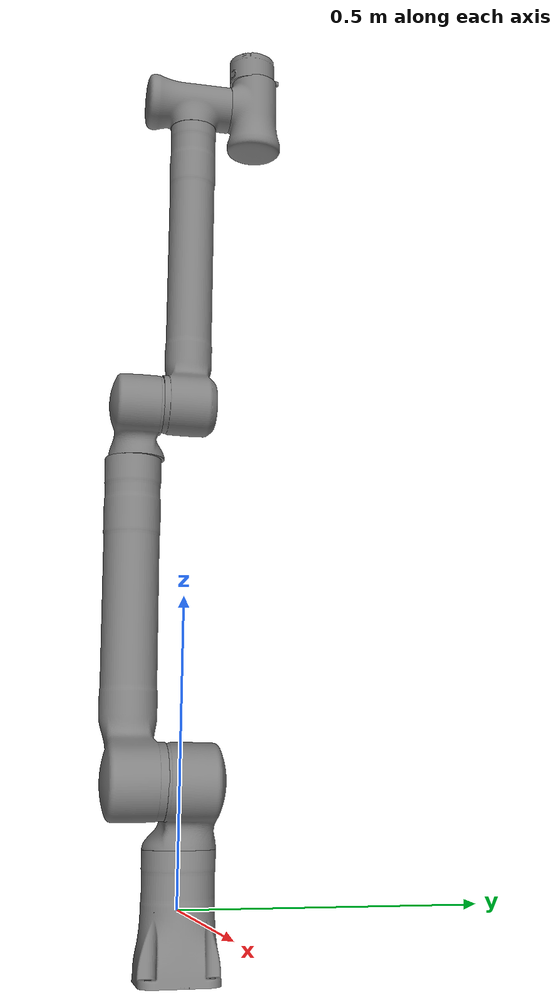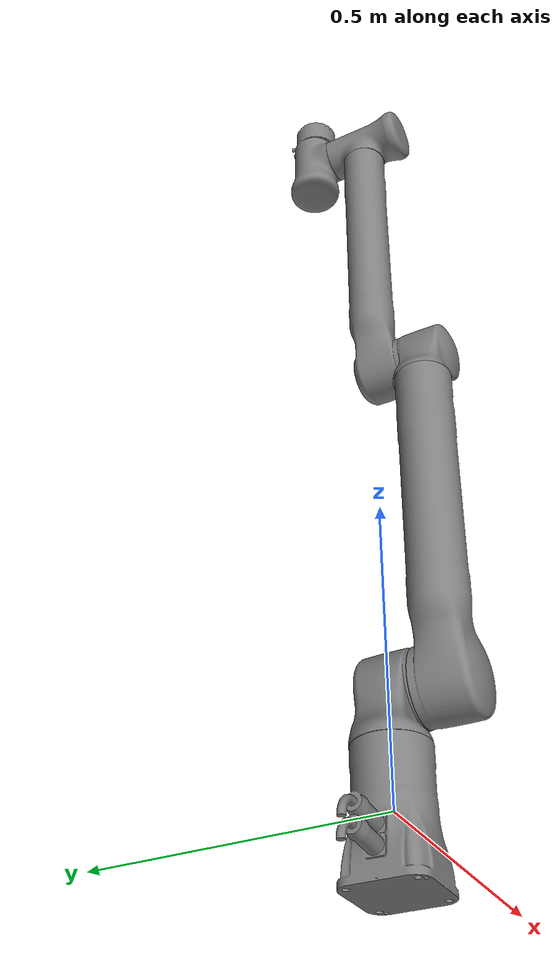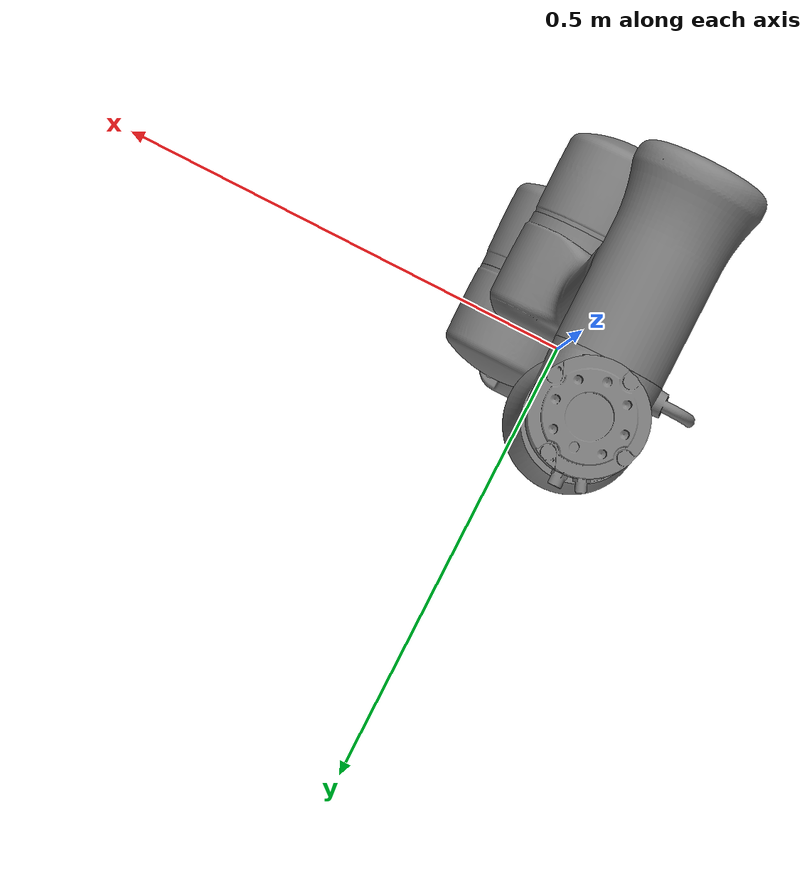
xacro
<?xml version="1.0"?>
<robot name="kr1205" xmlns:xacro="http://www.ros.org/wiki/xacro">

  <material name="black">
    <color rgba="0.5 0.5 0.5 1"/>
  </material>

  <!-- Base Link -->
  <link name="base_link">
    <visual>
      <geometry>
        <mesh filename="file:///home/mo/Thesis/src/robot_control/meshes/visual/base_link.stl" scale="0.001 0.001 0.001"/>
      </geometry>
      <material name="black"/>
    </visual>
  </link>

  <!-- joint_1 -->
  <joint name="joint_1" type="revolute">
    <parent link="base_link"/>
    <child link="link_1"/>
    <origin xyz="0.049 0.0 0.197" rpy="0 0 0"/>
    <axis xyz="0 0 1"/>
    <limit lower="-3.14" upper="3.14" effort="100" velocity="1.0"/>
  </joint>
  <link name="link_1">
    <visual>
      <geometry>
        <mesh filename="file:///home/mo/Thesis/src/robot_control/meshes/visual/link_1.stl" scale="0.001 0.001 0.001"/>
      </geometry>
      <material name="black"/>
    </visual>
  </link>

  <!-- joint_2 -->
  <joint name="joint_2" type="revolute">
    <parent link="link_1"/>
    <child link="link_2"/>
    <origin xyz="0.001 -0.0857 0.0007" rpy="0 0 0"/>
    <axis xyz="0 1 0"/>
    <limit lower="-3.14" upper="3.14" effort="100" velocity="1.0"/>
  </joint>
  <link name="link_2">
    <visual>
      <geometry>
        <mesh filename="file:///home/mo/Thesis/src/robot_control/meshes/visual/link_2.stl" scale="0.001 0.001 0.001"/>
      </geometry>
      <material name="black"/>
    </visual>
  </link>

  <!-- joint_3 -->
  <joint name="joint_3" type="revolute">
    <parent link="link_2"/>
    <child link="link_3"/>
    <origin xyz="-0.01111 0.0 0.61625" rpy="0 0 0"/>
    <axis xyz="0 0 1"/>
    <limit lower="-3.14" upper="3.14" effort="100" velocity="1.0"/>
  </joint>
  <link name="link_3">
    <visual>
      <geometry>
        <mesh filename="file:///home/mo/Thesis/src/robot_control/meshes/visual/link_3.stl" scale="0.001 0.001 0.001"/>
      </geometry>
      <material name="black"/>
    </visual>
  </link>

  <!-- joint_4 -->
  <joint name="joint_4" type="revolute">
    <parent link="link_3"/>
    <child link="link_4"/>
    <origin xyz="0.002 0.08405 0.003" rpy="0 0 0"/>
    <axis xyz="0 1 0"/>
    <limit lower="-3.14" upper="3.14" effort="100" velocity="1.0"/>
  </joint>
  <link name="link_4">
    <visual>
      <geometry>
        <mesh filename="file:///home/mo/Thesis/src/robot_control/meshes/visual/link_4.stl" scale="0.001 0.001 0.001"/>
      </geometry>
      <material name="black"/>
    </visual>
  </link>

  <!-- joint_5 -->
  <joint name="joint_5" type="revolute">
    <parent link="link_4"/>
    <child link="link_5"/>
    <origin xyz="-0.0405 0.002 0.574" rpy="0 0 0"/>
    <axis xyz="0.0 0.0 1.0"/>
    <limit lower="-3.14" upper="3.14" effort="100" velocity="1.0"/>
  </joint>
  <link name="link_5">
    <visual>
      <geometry>
        <mesh filename="file:///home/mo/Thesis/src/robot_control/meshes/visual/link_5.stl" scale="0.001 0.001 0.001"/>
      </geometry>
      <material name="black"/>
    </visual>
  </link>

  <!-- joint_6 -->
  <joint name="joint_6" type="revolute">
    <parent link="link_5"/>
    <child link="link_6"/>
    <origin xyz="0.0 0.109 0.003" rpy="0 0 0"/>
    <axis xyz="0 1 0"/>
    <limit lower="-3.14" upper="3.14" effort="100" velocity="1.0"/>
  </joint>
  <link name="link_6">
    <visual>
      <geometry>
        <mesh filename="file:///home/mo/Thesis/src/robot_control/meshes/visual/link_6.stl" scale="0.001 0.001 0.001"/>
      </geometry>
      <material name="black"/>
    </visual>
  </link>

  <!-- joint_7 -->
  <joint name="joint_7" type="revolute">
    <parent link="link_6"/>
    <child link="link_7"/>
    <origin xyz="-0.001 -0.004 -0.002" rpy="0 0 0"/>
    <axis xyz="0 0 1"/>
    <limit lower="-3.14" upper="3.14" effort="100" velocity="1.0"/>
  </joint>
  <link name="link_7">
    <visual>
      <geometry>
        <mesh filename="file:///home/mo/Thesis/src/robot_control/meshes/visual/link_7.stl" scale="0.001 0.001 0.001"/>
      </geometry>
      <material name="black"/>
    </visual>
  </link>
</robot>
